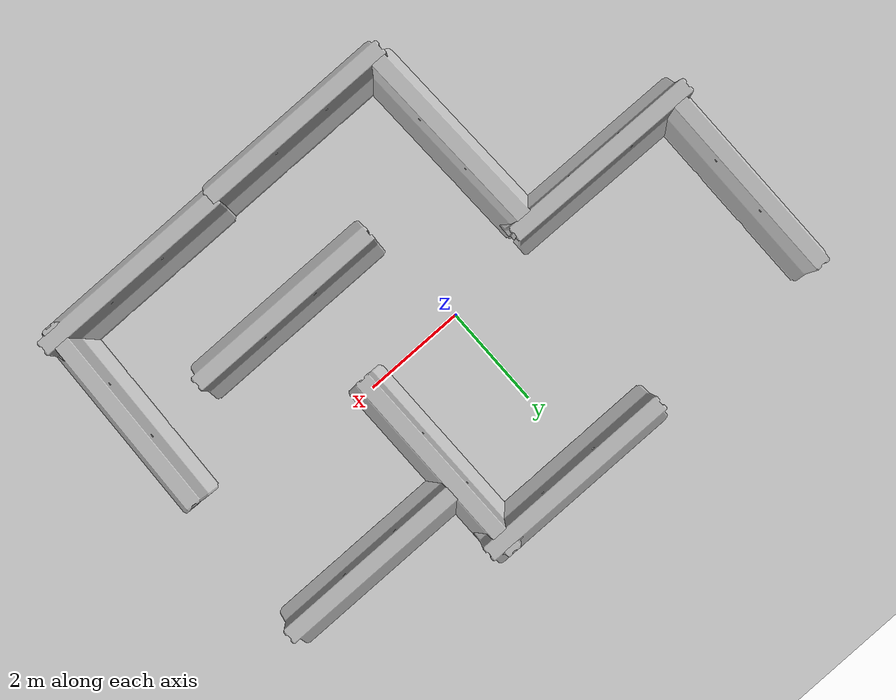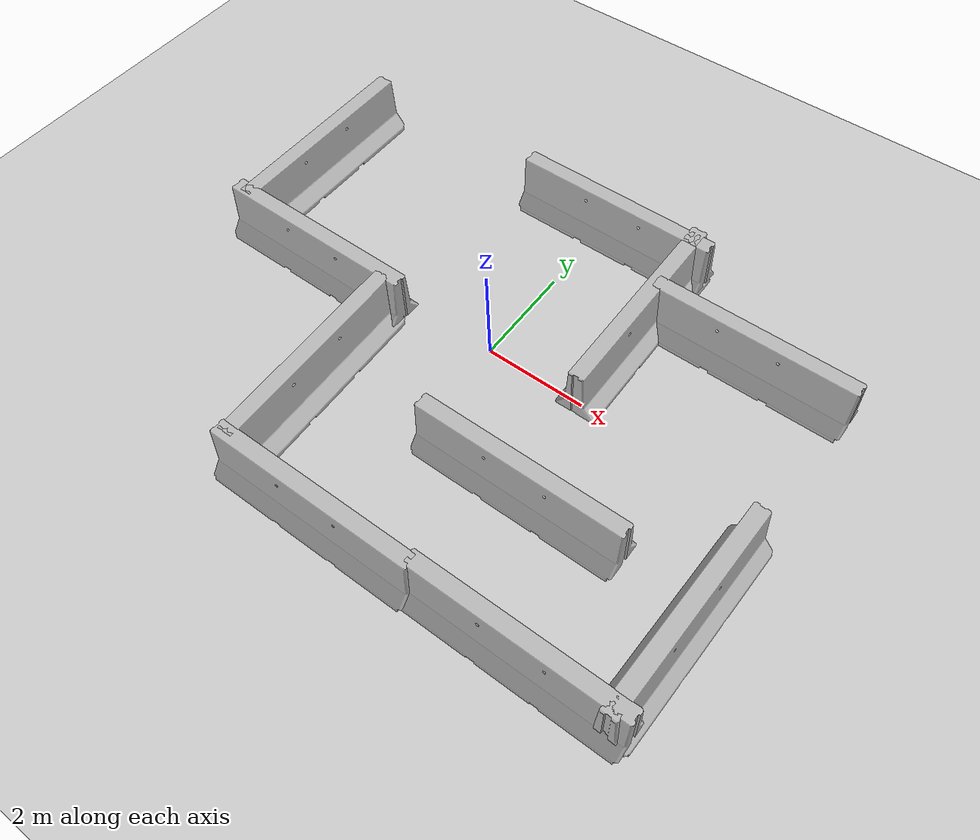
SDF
<sdf version="1.7">
 <world name="default">
  <light name="sun" type="directional">
   <pose>0 0 10 0 -0 0</pose>
   <diffuse>0.8 0.8 0.8 1</diffuse>
   <specular>0.2 0.2 0.2 1</specular>
   <attenuation>
    <range>1000</range>
    <constant>0.9</constant>
    <linear>0.01</linear>
    <quadratic>0.001</quadratic>
   </attenuation>
   <direction>-0.5 0.1 -0.9</direction>
   <spot><inner_angle>0</inner_angle><outer_angle>0</outer_angle><falloff>0</falloff></spot>
  </light>
  <model name="ground_plane">
   <static>1</static>
   <link name="link">
    <collision name="collision">
     <geometry><plane><normal>0 0 1</normal><size>100 100</size></plane></geometry>
     <surface><friction><ode><mu>100</mu><mu2>50</mu2></ode></friction></surface>
    </collision>
    <visual name="visual">
     <cast_shadows>0</cast_shadows>
     <geometry><plane><normal>0 0 1</normal><size>100 100</size></plane></geometry>
     <material>
      <script><uri>file://media/materials/scripts/gazebo.material</uri><name>Gazebo/Grey</name></script>
     </material>
    </visual>
   </link>
  </model>
  <gravity>0 0 -9.8</gravity>
  <magnetic_field>6e-06 2.3e-05 -4.2e-05</magnetic_field>
  <atmosphere type="adiabatic"/>
  <physics type="ode">
   <max_step_size>0.001</max_step_size>
   <real_time_factor>1</real_time_factor>
   <real_time_update_rate>1000</real_time_update_rate>
  </physics>
  <scene><ambient>0.4 0.4 0.4 1</ambient><background>0.7 0.7 0.7 1</background><shadows>1</shadows></scene>
  <audio><device>default</device></audio>
  <spherical_coordinates>
   <surface_model>EARTH_WGS84</surface_model>
   <latitude_deg>0</latitude_deg>
   <longitude_deg>0</longitude_deg>
   <elevation>0</elevation>
   <heading_deg>0</heading_deg>
  </spherical_coordinates>
  <model name="jersey_barrier">
   <static>1</static>
   <link name="link">
    <visual name="visual">
     <geometry><mesh><uri>model://jersey_barrier/meshes/jersey_barrier.dae</uri></mesh></geometry>
    </visual>
    <collision name="upright">
     <pose>0 0 0.5715 0 -0 0</pose>
     <geometry><box><size>4.06542 0.3063 1.143</size></box></geometry>
    </collision>
    <collision name="base">
     <pose>0 0 0.032258 0 -0 0</pose>
     <geometry><box><size>4.06542 0.8107 0.064516</size></box></geometry>
    </collision>
    <collision name="base2">
     <pose>0 0 0.1 0 -0 0</pose>
     <geometry><box><size>4.06542 0.65 0.1</size></box></geometry>
    </collision>
    <collision name="base3">
     <pose>0 0 0.2 0 -0 0</pose>
     <geometry><box><size>4.06542 0.5 0.1</size></box></geometry>
    </collision>
    <collision name="left-angle">
     <pose>0 -0.224 0.2401 0.9 -0 0</pose>
     <geometry><box><size>4.06542 0.5 0.064516</size></box></geometry>
    </collision>
    <collision name="right-angle">
     <pose>0 0.224 0.2401 -0.9 0 0</pose>
     <geometry><box><size>4.06542 0.5 0.064516</size></box></geometry>
    </collision>
   </link>
   <pose>-3.7053 -0.356096 0 0 0 -0.008215</pose>
  </model>
  <model name="jersey_barrier_0">
   <static>1</static>
   <link name="link">
    <visual name="visual">
     <geometry><mesh><uri>model://jersey_barrier/meshes/jersey_barrier.dae</uri></mesh></geometry>
    </visual>
    <collision name="upright">
     <pose>0 0 0.5715 0 -0 0</pose>
     <geometry><box><size>4.06542 0.3063 1.143</size></box></geometry>
    </collision>
    <collision name="base">
     <pose>0 0 0.032258 0 -0 0</pose>
     <geometry><box><size>4.06542 0.8107 0.064516</size></box></geometry>
    </collision>
    <collision name="base2">
     <pose>0 0 0.1 0 -0 0</pose>
     <geometry><box><size>4.06542 0.65 0.1</size></box></geometry>
    </collision>
    <collision name="base3">
     <pose>0 0 0.2 0 -0 0</pose>
     <geometry><box><size>4.06542 0.5 0.1</size></box></geometry>
    </collision>
    <collision name="left-angle">
     <pose>0 -0.224 0.2401 0.9 -0 0</pose>
     <geometry><box><size>4.06542 0.5 0.064516</size></box></geometry>
    </collision>
    <collision name="right-angle">
     <pose>0 0.224 0.2401 -0.9 0 0</pose>
     <geometry><box><size>4.06542 0.5 0.064516</size></box></geometry>
    </collision>
   </link>
   <pose>0.334745 3.53591 0 0 -0 0</pose>
  </model>
  <model name="jersey_barrier_1">
   <static>1</static>
   <link name="link">
    <visual name="visual">
     <geometry><mesh><uri>model://jersey_barrier/meshes/jersey_barrier.dae</uri></mesh></geometry>
    </visual>
    <collision name="upright">
     <pose>0 0 0.5715 0 -0 0</pose>
     <geometry><box><size>4.06542 0.3063 1.143</size></box></geometry>
    </collision>
    <collision name="base">
     <pose>0 0 0.032258 0 -0 0</pose>
     <geometry><box><size>4.06542 0.8107 0.064516</size></box></geometry>
    </collision>
    <collision name="base2">
     <pose>0 0 0.1 0 -0 0</pose>
     <geometry><box><size>4.06542 0.65 0.1</size></box></geometry>
    </collision>
    <collision name="base3">
     <pose>0 0 0.2 0 -0 0</pose>
     <geometry><box><size>4.06542 0.5 0.1</size></box></geometry>
    </collision>
    <collision name="left-angle">
     <pose>0 -0.224 0.2401 0.9 -0 0</pose>
     <geometry><box><size>4.06542 0.5 0.064516</size></box></geometry>
    </collision>
    <collision name="right-angle">
     <pose>0 0.224 0.2401 -0.9 0 0</pose>
     <geometry><box><size>4.06542 0.5 0.064516</size></box></geometry>
    </collision>
   </link>
   <pose>-0.094807 -4.40183 0 0 -0 0</pose>
  </model>
  <model name="jersey_barrier_2">
   <static>1</static>
   <link name="link">
    <visual name="visual">
     <geometry><mesh><uri>model://jersey_barrier/meshes/jersey_barrier.dae</uri></mesh></geometry>
    </visual>
    <collision name="upright">
     <pose>0 0 0.5715 0 -0 0</pose>
     <geometry><box><size>4.06542 0.3063 1.143</size></box></geometry>
    </collision>
    <collision name="base">
     <pose>0 0 0.032258 0 -0 0</pose>
     <geometry><box><size>4.06542 0.8107 0.064516</size></box></geometry>
    </collision>
    <collision name="base2">
     <pose>0 0 0.1 0 -0 0</pose>
     <geometry><box><size>4.06542 0.65 0.1</size></box></geometry>
    </collision>
    <collision name="base3">
     <pose>0 0 0.2 0 -0 0</pose>
     <geometry><box><size>4.06542 0.5 0.1</size></box></geometry>
    </collision>
    <collision name="left-angle">
     <pose>0 -0.224 0.2401 0.9 -0 0</pose>
     <geometry><box><size>4.06542 0.5 0.064516</size></box></geometry>
    </collision>
    <collision name="right-angle">
     <pose>0 0.224 0.2401 -0.9 0 0</pose>
     <geometry><box><size>4.06542 0.5 0.064516</size></box></geometry>
    </collision>
   </link>
   <pose>-1.97849 -2.42579 0 0 0 -1.54065</pose>
  </model>
  <model name="jersey_barrier_3">
   <static>1</static>
   <link name="link">
    <visual name="visual">
     <geometry><mesh><uri>model://jersey_barrier/meshes/jersey_barrier.dae</uri></mesh></geometry>
    </visual>
    <collision name="upright">
     <pose>0 0 0.5715 0 -0 0</pose>
     <geometry><box><size>4.06542 0.3063 1.143</size></box></geometry>
    </collision>
    <collision name="base">
     <pose>0 0 0.032258 0 -0 0</pose>
     <geometry><box><size>4.06542 0.8107 0.064516</size></box></geometry>
    </collision>
    <collision name="base2">
     <pose>0 0 0.1 0 -0 0</pose>
     <geometry><box><size>4.06542 0.65 0.1</size></box></geometry>
    </collision>
    <collision name="base3">
     <pose>0 0 0.2 0 -0 0</pose>
     <geometry><box><size>4.06542 0.5 0.1</size></box></geometry>
    </collision>
    <collision name="left-angle">
     <pose>0 -0.224 0.2401 0.9 -0 0</pose>
     <geometry><box><size>4.06542 0.5 0.064516</size></box></geometry>
    </collision>
    <collision name="right-angle">
     <pose>0 0.224 0.2401 -0.9 0 0</pose>
     <geometry><box><size>4.06542 0.5 0.064516</size></box></geometry>
    </collision>
   </link>
   <pose>-5.41512 1.58093 0 0 0 -1.57085</pose>
  </model>
  <model name="jersey_barrier_4">
   <static>1</static>
   <link name="link">
    <visual name="visual">
     <geometry><mesh><uri>model://jersey_barrier/meshes/jersey_barrier.dae</uri></mesh></geometry>
    </visual>
    <collision name="upright">
     <pose>0 0 0.5715 0 -0 0</pose>
     <geometry><box><size>4.06542 0.3063 1.143</size></box></geometry>
    </collision>
    <collision name="base">
     <pose>0 0 0.032258 0 -0 0</pose>
     <geometry><box><size>4.06542 0.8107 0.064516</size></box></geometry>
    </collision>
    <collision name="base2">
     <pose>0 0 0.1 0 -0 0</pose>
     <geometry><box><size>4.06542 0.65 0.1</size></box></geometry>
    </collision>
    <collision name="base3">
     <pose>0 0 0.2 0 -0 0</pose>
     <geometry><box><size>4.06542 0.5 0.1</size></box></geometry>
    </collision>
    <collision name="left-angle">
     <pose>0 -0.224 0.2401 0.9 -0 0</pose>
     <geometry><box><size>4.06542 0.5 0.064516</size></box></geometry>
    </collision>
    <collision name="right-angle">
     <pose>0 0.224 0.2401 -0.9 0 0</pose>
     <geometry><box><size>4.06542 0.5 0.064516</size></box></geometry>
    </collision>
   </link>
   <pose>1.98187 1.77775 0 0 -0 1.57621</pose>
  </model>
  <model name="jersey_barrier_5">
   <static>1</static>
   <link name="link">
    <visual name="visual">
     <geometry><mesh><uri>model://jersey_barrier/meshes/jersey_barrier.dae</uri></mesh></geometry>
    </visual>
    <collision name="upright">
     <pose>0 0 0.5715 0 -0 0</pose>
     <geometry><box><size>4.06542 0.3063 1.143</size></box></geometry>
    </collision>
    <collision name="base">
     <pose>0 0 0.032258 0 -0 0</pose>
     <geometry><box><size>4.06542 0.8107 0.064516</size></box></geometry>
    </collision>
    <collision name="base2">
     <pose>0 0 0.1 0 -0 0</pose>
     <geometry><box><size>4.06542 0.65 0.1</size></box></geometry>
    </collision>
    <collision name="base3">
     <pose>0 0 0.2 0 -0 0</pose>
     <geometry><box><size>4.06542 0.5 0.1</size></box></geometry>
    </collision>
    <collision name="left-angle">
     <pose>0 -0.224 0.2401 0.9 -0 0</pose>
     <geometry><box><size>4.06542 0.5 0.064516</size></box></geometry>
    </collision>
    <collision name="right-angle">
     <pose>0 0.224 0.2401 -0.9 0 0</pose>
     <geometry><box><size>4.06542 0.5 0.064516</size></box></geometry>
    </collision>
   </link>
   <pose>3.82814 -4.34422 0 0 -0 0</pose>
  </model>
  <model name="jersey_barrier_6">
   <static>1</static>
   <link name="link">
    <visual name="visual">
     <geometry><mesh><uri>model://jersey_barrier/meshes/jersey_barrier.dae</uri></mesh></geometry>
    </visual>
    <collision name="upright">
     <pose>0 0 0.5715 0 -0 0</pose>
     <geometry><box><size>4.06542 0.3063 1.143</size></box></geometry>
    </collision>
    <collision name="base">
     <pose>0 0 0.032258 0 -0 0</pose>
     <geometry><box><size>4.06542 0.8107 0.064516</size></box></geometry>
    </collision>
    <collision name="base2">
     <pose>0 0 0.1 0 -0 0</pose>
     <geometry><box><size>4.06542 0.65 0.1</size></box></geometry>
    </collision>
    <collision name="base3">
     <pose>0 0 0.2 0 -0 0</pose>
     <geometry><box><size>4.06542 0.5 0.1</size></box></geometry>
    </collision>
    <collision name="left-angle">
     <pose>0 -0.224 0.2401 0.9 -0 0</pose>
     <geometry><box><size>4.06542 0.5 0.064516</size></box></geometry>
    </collision>
    <collision name="right-angle">
     <pose>0 0.224 0.2401 -0.9 0 0</pose>
     <geometry><box><size>4.06542 0.5 0.064516</size></box></geometry>
    </collision>
   </link>
   <pose>5.58773 -2.54517 0 0 0 -1.60785</pose>
  </model>
  <model name="jersey_barrier_7">
   <static>1</static>
   <link name="link">
    <visual name="visual">
     <geometry><mesh><uri>model://jersey_barrier/meshes/jersey_barrier.dae</uri></mesh></geometry>
    </visual>
    <collision name="upright">
     <pose>0 0 0.5715 0 -0 0</pose>
     <geometry><box><size>4.06542 0.3063 1.143</size></box></geometry>
    </collision>
    <collision name="base">
     <pose>0 0 0.032258 0 -0 0</pose>
     <geometry><box><size>4.06542 0.8107 0.064516</size></box></geometry>
    </collision>
    <collision name="base2">
     <pose>0 0 0.1 0 -0 0</pose>
     <geometry><box><size>4.06542 0.65 0.1</size></box></geometry>
    </collision>
    <collision name="base3">
     <pose>0 0 0.2 0 -0 0</pose>
     <geometry><box><size>4.06542 0.5 0.1</size></box></geometry>
    </collision>
    <collision name="left-angle">
     <pose>0 -0.224 0.2401 0.9 -0 0</pose>
     <geometry><box><size>4.06542 0.5 0.064516</size></box></geometry>
    </collision>
    <collision name="right-angle">
     <pose>0 0.224 0.2401 -0.9 0 0</pose>
     <geometry><box><size>4.06542 0.5 0.064516</size></box></geometry>
    </collision>
   </link>
   <pose>3.92571 2.3055 0 0 -0 0</pose>
  </model>
  <model name="jersey_barrier_8">
   <static>1</static>
   <link name="link">
    <visual name="visual">
     <geometry><mesh><uri>model://jersey_barrier/meshes/jersey_barrier.dae</uri></mesh></geometry>
    </visual>
    <collision name="upright">
     <pose>0 0 0.5715 0 -0 0</pose>
     <geometry><box><size>4.06542 0.3063 1.143</size></box></geometry>
    </collision>
    <collision name="base">
     <pose>0 0 0.032258 0 -0 0</pose>
     <geometry><box><size>4.06542 0.8107 0.064516</size></box></geometry>
    </collision>
    <collision name="base2">
     <pose>0 0 0.1 0 -0 0</pose>
     <geometry><box><size>4.06542 0.65 0.1</size></box></geometry>
    </collision>
    <collision name="base3">
     <pose>0 0 0.2 0 -0 0</pose>
     <geometry><box><size>4.06542 0.5 0.1</size></box></geometry>
    </collision>
    <collision name="left-angle">
     <pose>0 -0.224 0.2401 0.9 -0 0</pose>
     <geometry><box><size>4.06542 0.5 0.064516</size></box></geometry>
    </collision>
    <collision name="right-angle">
     <pose>0 0.224 0.2401 -0.9 0 0</pose>
     <geometry><box><size>4.06542 0.5 0.064516</size></box></geometry>
    </collision>
   </link>
   <pose>2.21291 -2.09202 0 0 -0 0</pose>
  </model>
 </world>
</sdf>
